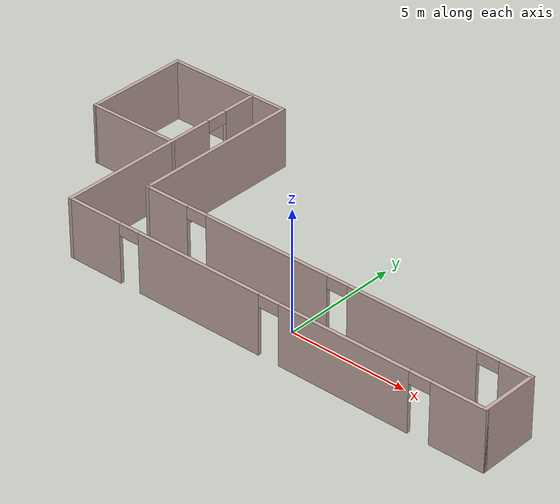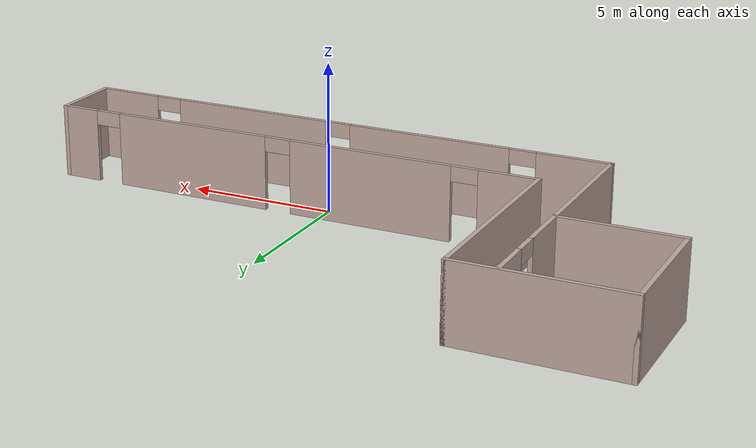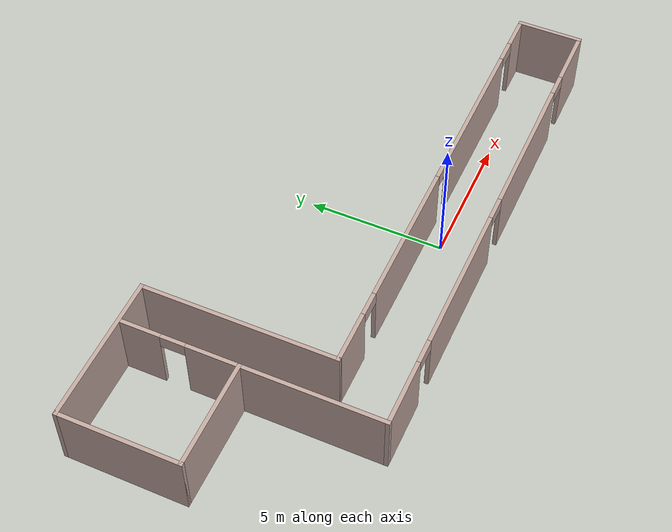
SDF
<?xml version='1.0'?>
<sdf version='1.7'>
  <model name='Apaartment'>
    <pose>-1.51442 3.03058 0 0 -0 0</pose>
    <link name='Wall_10'>
      <collision name='Wall_10_Collision'>
        <geometry>
          <box>
            <size>5.5 0.15 2.5</size>
          </box>
        </geometry>
        <pose>0 0 1.25 0 -0 0</pose>
      </collision>
      <visual name='Wall_10_Visual'>
        <pose>0 0 1.25 0 -0 0</pose>
        <geometry>
          <box>
            <size>5.5 0.15 2.5</size>
          </box>
        </geometry>
        <material>
          <script>
            <uri>file://media/materials/scripts/gazebo.material</uri>
            <name>Gazebo/Grey</name>
          </script>
          <ambient>0.760784 0.662745 0.627451 1</ambient>
        </material>
        <meta>
          <layer>0</layer>
        </meta>
      </visual>
      <pose>-8.55 4.725 0 0 -0 0</pose>
    </link>
    <link name='Wall_11'>
      <collision name='Wall_11_Collision'>
        <geometry>
          <box>
            <size>7.25 0.15 2.5</size>
          </box>
        </geometry>
        <pose>0 0 1.25 0 -0 0</pose>
      </collision>
      <visual name='Wall_11_Visual'>
        <pose>0 0 1.25 0 -0 0</pose>
        <geometry>
          <box>
            <size>7.25 0.15 2.5</size>
          </box>
        </geometry>
        <material>
          <script>
            <uri>file://media/materials/scripts/gazebo.material</uri>
            <name>Gazebo/Grey</name>
          </script>
          <ambient>0.760784 0.662745 0.627451 1</ambient>
        </material>
        <meta>
          <layer>0</layer>
        </meta>
      </visual>
      <pose>-5.875 1.175 0 0 -0 -1.5708</pose>
    </link>
    <link name='Wall_12'>
      <pose>2.675 -2.375 0 0 -0 0</pose>
      <visual name='Wall_12_Visual_0'>
        <pose>-7.62308 0 1.25 0 -0 0</pose>
        <geometry>
          <box>
            <size>2.00384 0.15 2.5</size>
          </box>
        </geometry>
        <material>
          <script>
            <uri>file://media/materials/scripts/gazebo.material</uri>
            <name>Gazebo/Grey</name>
          </script>
          <ambient>0.760784 0.662745 0.627451 1</ambient>
        </material>
        <meta>
          <layer>0</layer>
        </meta>
      </visual>
      <collision name='Wall_12_Collision_0'>
        <geometry>
          <box>
            <size>2.00384 0.15 2.5</size>
          </box>
        </geometry>
        <pose>-7.62308 0 1.25 0 -0 0</pose>
      </collision>
      <visual name='Wall_12_Visual_1'>
        <pose>-2.92025 0 1.25 0 -0 0</pose>
        <geometry>
          <box>
            <size>5.60181 0.15 2.5</size>
          </box>
        </geometry>
        <material>
          <script>
            <uri>file://media/materials/scripts/gazebo.material</uri>
            <name>Gazebo/Grey</name>
          </script>
          <ambient>0.760784 0.662745 0.627451 1</ambient>
        </material>
        <meta>
          <layer>0</layer>
        </meta>
      </visual>
      <collision name='Wall_12_Collision_1'>
        <geometry>
          <box>
            <size>5.60181 0.15 2.5</size>
          </box>
        </geometry>
        <pose>-2.92025 0 1.25 0 -0 0</pose>
      </collision>
      <visual name='Wall_12_Visual_2'>
        <pose>3.57219 0 1.25 0 -0 0</pose>
        <geometry>
          <box>
            <size>5.58307 0.15 2.5</size>
          </box>
        </geometry>
        <material>
          <script>
            <uri>file://media/materials/scripts/gazebo.material</uri>
            <name>Gazebo/Grey</name>
          </script>
          <ambient>0.760784 0.662745 0.627451 1</ambient>
        </material>
        <meta>
          <layer>0</layer>
        </meta>
      </visual>
      <collision name='Wall_12_Collision_2'>
        <geometry>
          <box>
            <size>5.58307 0.15 2.5</size>
          </box>
        </geometry>
        <pose>3.57219 0 1.25 0 -0 0</pose>
      </collision>
      <visual name='Wall_12_Visual_3'>
        <pose>7.94436 0 1.25 0 -0 0</pose>
        <geometry>
          <box>
            <size>1.36128 0.15 2.5</size>
          </box>
        </geometry>
        <material>
          <script>
            <uri>file://media/materials/scripts/gazebo.material</uri>
            <name>Gazebo/Grey</name>
          </script>
          <ambient>0.760784 0.662745 0.627451 1</ambient>
        </material>
        <meta>
          <layer>0</layer>
        </meta>
      </visual>
      <collision name='Wall_12_Collision_3'>
        <geometry>
          <box>
            <size>1.36128 0.15 2.5</size>
          </box>
        </geometry>
        <pose>7.94436 0 1.25 0 -0 0</pose>
      </collision>
      <visual name='Wall_12_Visual_4'>
        <pose>-6.17116 0 2.25 0 -0 0</pose>
        <geometry>
          <box>
            <size>0.9 0.15 0.5</size>
          </box>
        </geometry>
        <material>
          <script>
            <uri>file://media/materials/scripts/gazebo.material</uri>
            <name>Gazebo/Grey</name>
          </script>
          <ambient>0.760784 0.662745 0.627451 1</ambient>
        </material>
        <meta>
          <layer>0</layer>
        </meta>
      </visual>
      <collision name='Wall_12_Collision_4'>
        <geometry>
          <box>
            <size>0.9 0.15 0.5</size>
          </box>
        </geometry>
        <pose>-6.17116 0 2.25 0 -0 0</pose>
      </collision>
      <visual name='Wall_12_Visual_5'>
        <pose>0.330652 0 2.25 0 -0 0</pose>
        <geometry>
          <box>
            <size>0.9 0.15 0.5</size>
          </box>
        </geometry>
        <material>
          <script>
            <uri>file://media/materials/scripts/gazebo.material</uri>
            <name>Gazebo/Grey</name>
          </script>
          <ambient>0.760784 0.662745 0.627451 1</ambient>
        </material>
        <meta>
          <layer>0</layer>
        </meta>
      </visual>
      <collision name='Wall_12_Collision_5'>
        <geometry>
          <box>
            <size>0.9 0.15 0.5</size>
          </box>
        </geometry>
        <pose>0.330652 0 2.25 0 -0 0</pose>
      </collision>
      <visual name='Wall_12_Visual_6'>
        <pose>6.81372 0 2.25 0 -0 0</pose>
        <geometry>
          <box>
            <size>0.9 0.15 0.5</size>
          </box>
        </geometry>
        <material>
          <script>
            <uri>file://media/materials/scripts/gazebo.material</uri>
            <name>Gazebo/Grey</name>
          </script>
          <ambient>0.760784 0.662745 0.627451 1</ambient>
        </material>
        <meta>
          <layer>0</layer>
        </meta>
      </visual>
      <collision name='Wall_12_Collision_6'>
        <geometry>
          <box>
            <size>0.9 0.15 0.5</size>
          </box>
        </geometry>
        <pose>6.81372 0 2.25 0 -0 0</pose>
      </collision>
    </link>
    <link name='Wall_13'>
      <collision name='Wall_13_Collision'>
        <geometry>
          <box>
            <size>2.5 0.15 2.5</size>
          </box>
        </geometry>
        <pose>0 0 1.25 0 -0 0</pose>
      </collision>
      <visual name='Wall_13_Visual'>
        <pose>0 0 1.25 0 -0 0</pose>
        <geometry>
          <box>
            <size>2.5 0.15 2.5</size>
          </box>
        </geometry>
        <material>
          <script>
            <uri>file://media/materials/scripts/gazebo.material</uri>
            <name>Gazebo/Grey</name>
          </script>
          <ambient>0.760784 0.662745 0.627451 1</ambient>
        </material>
        <meta>
          <layer>0</layer>
        </meta>
      </visual>
      <pose>11.225 -3.55 0 0 -0 -1.5708</pose>
    </link>
    <link name='Wall_14'>
      <pose>1.925 -4.725 0 0 -0 3.14159</pose>
      <visual name='Wall_14_Visual_0'>
        <pose>-8.22745 0 1.25 0 -0 0</pose>
        <geometry>
          <box>
            <size>2.2951 0.15 2.5</size>
          </box>
        </geometry>
        <material>
          <script>
            <uri>file://media/materials/scripts/gazebo.material</uri>
            <name>Gazebo/Grey</name>
          </script>
          <ambient>0.760784 0.662745 0.627451 1</ambient>
        </material>
        <meta>
          <layer>0</layer>
        </meta>
      </visual>
      <collision name='Wall_14_Collision_0'>
        <geometry>
          <box>
            <size>2.2951 0.15 2.5</size>
          </box>
        </geometry>
        <pose>-8.22745 0 1.25 0 -0 0</pose>
      </collision>
      <visual name='Wall_14_Visual_1'>
        <pose>-3.35511 0 1.25 0 -0 0</pose>
        <geometry>
          <box>
            <size>5.64956 0.15 2.5</size>
          </box>
        </geometry>
        <material>
          <script>
            <uri>file://media/materials/scripts/gazebo.material</uri>
            <name>Gazebo/Grey</name>
          </script>
          <ambient>0.760784 0.662745 0.627451 1</ambient>
        </material>
        <meta>
          <layer>0</layer>
        </meta>
      </visual>
      <collision name='Wall_14_Collision_1'>
        <geometry>
          <box>
            <size>5.64956 0.15 2.5</size>
          </box>
        </geometry>
        <pose>-3.35511 0 1.25 0 -0 0</pose>
      </collision>
      <visual name='Wall_14_Visual_2'>
        <pose>3.16929 0 1.25 0 -0 0</pose>
        <geometry>
          <box>
            <size>5.59925 0.15 2.5</size>
          </box>
        </geometry>
        <material>
          <script>
            <uri>file://media/materials/scripts/gazebo.material</uri>
            <name>Gazebo/Grey</name>
          </script>
          <ambient>0.760784 0.662745 0.627451 1</ambient>
        </material>
        <meta>
          <layer>0</layer>
        </meta>
      </visual>
      <collision name='Wall_14_Collision_2'>
        <geometry>
          <box>
            <size>5.59925 0.15 2.5</size>
          </box>
        </geometry>
        <pose>3.16929 0 1.25 0 -0 0</pose>
      </collision>
      <visual name='Wall_14_Visual_3'>
        <pose>8.12196 0 1.25 0 -0 0</pose>
        <geometry>
          <box>
            <size>2.50608 0.15 2.5</size>
          </box>
        </geometry>
        <material>
          <script>
            <uri>file://media/materials/scripts/gazebo.material</uri>
            <name>Gazebo/Grey</name>
          </script>
          <ambient>0.760784 0.662745 0.627451 1</ambient>
        </material>
        <meta>
          <layer>0</layer>
        </meta>
      </visual>
      <collision name='Wall_14_Collision_3'>
        <geometry>
          <box>
            <size>2.50608 0.15 2.5</size>
          </box>
        </geometry>
        <pose>8.12196 0 1.25 0 -0 0</pose>
      </collision>
      <visual name='Wall_14_Visual_4'>
        <pose>-6.6299 0 2.25 0 -0 0</pose>
        <geometry>
          <box>
            <size>0.9 0.15 0.5</size>
          </box>
        </geometry>
        <material>
          <script>
            <uri>file://media/materials/scripts/gazebo.material</uri>
            <name>Gazebo/Grey</name>
          </script>
          <ambient>0.760784 0.662745 0.627451 1</ambient>
        </material>
        <meta>
          <layer>0</layer>
        </meta>
      </visual>
      <collision name='Wall_14_Collision_4'>
        <geometry>
          <box>
            <size>0.9 0.15 0.5</size>
          </box>
        </geometry>
        <pose>-6.6299 0 2.25 0 -0 0</pose>
      </collision>
      <visual name='Wall_14_Visual_5'>
        <pose>-0.080332 0 2.25 0 -0 0</pose>
        <geometry>
          <box>
            <size>0.9 0.15 0.5</size>
          </box>
        </geometry>
        <material>
          <script>
            <uri>file://media/materials/scripts/gazebo.material</uri>
            <name>Gazebo/Grey</name>
          </script>
          <ambient>0.760784 0.662745 0.627451 1</ambient>
        </material>
        <meta>
          <layer>0</layer>
        </meta>
      </visual>
      <collision name='Wall_14_Collision_5'>
        <geometry>
          <box>
            <size>0.9 0.15 0.5</size>
          </box>
        </geometry>
        <pose>-0.080332 0 2.25 0 -0 0</pose>
      </collision>
      <visual name='Wall_14_Visual_6'>
        <pose>6.41892 0 2.25 0 -0 0</pose>
        <geometry>
          <box>
            <size>0.9 0.15 0.5</size>
          </box>
        </geometry>
        <material>
          <script>
            <uri>file://media/materials/scripts/gazebo.material</uri>
            <name>Gazebo/Grey</name>
          </script>
          <ambient>0.760784 0.662745 0.627451 1</ambient>
        </material>
        <meta>
          <layer>0</layer>
        </meta>
      </visual>
      <collision name='Wall_14_Collision_6'>
        <geometry>
          <box>
            <size>0.9 0.15 0.5</size>
          </box>
        </geometry>
        <pose>6.41892 0 2.25 0 -0 0</pose>
      </collision>
    </link>
    <link name='Wall_15'>
      <pose>-7.375 -0.05 0 0 -0 1.5708</pose>
      <visual name='Wall_15_Visual_0'>
        <pose>-1.20386 0 1.25 0 -0 0</pose>
        <geometry>
          <box>
            <size>7.09227 0.15 2.5</size>
          </box>
        </geometry>
        <material>
          <script>
            <uri>file://media/materials/scripts/gazebo.material</uri>
            <name>Gazebo/Grey</name>
          </script>
          <ambient>0.760784 0.662745 0.627451 1</ambient>
        </material>
        <meta>
          <layer>0</layer>
        </meta>
      </visual>
      <collision name='Wall_15_Collision_0'>
        <geometry>
          <box>
            <size>7.09227 0.15 2.5</size>
          </box>
        </geometry>
        <pose>-1.20386 0 1.25 0 -0 0</pose>
      </collision>
      <visual name='Wall_15_Visual_1'>
        <pose>3.99614 0 1.25 0 -0 0</pose>
        <geometry>
          <box>
            <size>1.50773 0.15 2.5</size>
          </box>
        </geometry>
        <material>
          <script>
            <uri>file://media/materials/scripts/gazebo.material</uri>
            <name>Gazebo/Grey</name>
          </script>
          <ambient>0.760784 0.662745 0.627451 1</ambient>
        </material>
        <meta>
          <layer>0</layer>
        </meta>
      </visual>
      <collision name='Wall_15_Collision_1'>
        <geometry>
          <box>
            <size>1.50773 0.15 2.5</size>
          </box>
        </geometry>
        <pose>3.99614 0 1.25 0 -0 0</pose>
      </collision>
      <visual name='Wall_15_Visual_2'>
        <pose>2.79227 0 2.25 0 -0 0</pose>
        <geometry>
          <box>
            <size>0.9 0.15 0.5</size>
          </box>
        </geometry>
        <material>
          <script>
            <uri>file://media/materials/scripts/gazebo.material</uri>
            <name>Gazebo/Grey</name>
          </script>
          <ambient>0.760784 0.662745 0.627451 1</ambient>
        </material>
        <meta>
          <layer>0</layer>
        </meta>
      </visual>
      <collision name='Wall_15_Collision_2'>
        <geometry>
          <box>
            <size>0.9 0.15 0.5</size>
          </box>
        </geometry>
        <pose>2.79227 0 2.25 0 -0 0</pose>
      </collision>
    </link>
    <link name='Wall_17'>
      <collision name='Wall_17_Collision'>
        <geometry>
          <box>
            <size>4.5 0.15 2.5</size>
          </box>
        </geometry>
        <pose>0 0 1.25 0 -0 0</pose>
      </collision>
      <visual name='Wall_17_Visual'>
        <pose>0 0 1.25 0 -0 0</pose>
        <geometry>
          <box>
            <size>4.5 0.15 2.5</size>
          </box>
        </geometry>
        <material>
          <script>
            <uri>file://media/materials/scripts/gazebo.material</uri>
            <name>Gazebo/Grey</name>
          </script>
          <ambient>0.760784 0.662745 0.627451 1</ambient>
        </material>
        <meta>
          <layer>0</layer>
        </meta>
      </visual>
      <pose>-11.225 2.55 0 0 -0 -1.5708</pose>
    </link>
    <link name='Wall_18'>
      <collision name='Wall_18_Collision'>
        <geometry>
          <box>
            <size>4 0.15 2.5</size>
          </box>
        </geometry>
        <pose>0 0 1.25 0 -0 0</pose>
      </collision>
      <visual name='Wall_18_Visual'>
        <pose>0 0 1.25 0 -0 0</pose>
        <geometry>
          <box>
            <size>4 0.15 2.5</size>
          </box>
        </geometry>
        <material>
          <script>
            <uri>file://media/materials/scripts/gazebo.material</uri>
            <name>Gazebo/Grey</name>
          </script>
          <ambient>0.760784 0.662745 0.627451 1</ambient>
        </material>
        <meta>
          <layer>0</layer>
        </meta>
      </visual>
      <pose>-9.3 0.375 0 0 -0 0</pose>
    </link>
    <static>1</static>
  </model>
</sdf>
